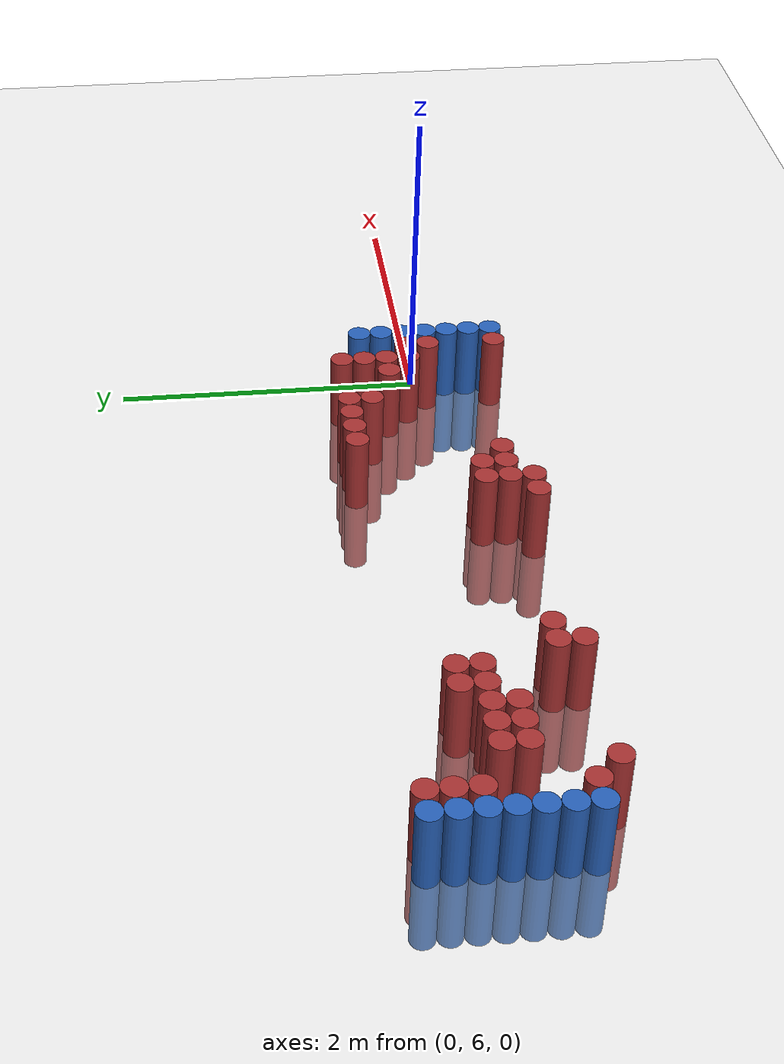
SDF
<sdf version="1.6">
 <world name="default">
  <model name="ground_plane">
   <static>1</static>
   <link name="link">
    <collision name="collision">
     <geometry><plane><normal>0 0 1</normal><size>100 100</size></plane></geometry>
     <surface><friction><ode><mu>100</mu><mu2>50</mu2></ode></friction></surface>
    </collision>
    <visual name="visual">
     <cast_shadows>0</cast_shadows>
     <geometry><plane><normal>0 0 1</normal><size>100 100</size></plane></geometry>
     <material>
      <script><uri>file://media/materials/scripts/gazebo.material</uri><name>Gazebo/Grey</name></script>
     </material>
    </visual>
   </link>
  </model>
  <model name="unit_cylinder_99">
   <static>1</static>
   <pose>-4.425000 5.625000 0.000000 0.000000 0.000000 0.000000</pose>
   <link name="link">
    <inertial>
     <mass>1</mass>
     <inertia><ixx>0.145833</ixx><ixy>0</ixy><ixz>0</ixz><iyy>0.145833</iyy><iyz>0</iyz><izz>0.125</izz></inertia>
    </inertial>
    <collision name="collision">
     <geometry><cylinder><radius>0.075000</radius><length>1</length></cylinder></geometry>
    </collision>
    <visual name="visual">
     <geometry><cylinder><radius>0.075000</radius><length>1</length></cylinder></geometry>
     <material>
      <ambient>0.152000 0.379000 0.720000 1</ambient>
      <diffuse>0.152000 0.379000 0.720000 1</diffuse>
     </material>
     <material>
      <script><name>Gazebo/Grey</name><uri>file://media/materials/scripts/gazebo.material</uri></script>
     </material>
    </visual>
   </link>
  </model>
  <model name="unit_cylinder_100">
   <static>1</static>
   <pose>-4.425000 5.775000 0.000000 0.000000 0.000000 0.000000</pose>
   <link name="link">
    <inertial>
     <mass>1</mass>
     <inertia><ixx>0.145833</ixx><ixy>0</ixy><ixz>0</ixz><iyy>0.145833</iyy><iyz>0</iyz><izz>0.125</izz></inertia>
    </inertial>
    <collision name="collision">
     <geometry><cylinder><radius>0.075000</radius><length>1</length></cylinder></geometry>
    </collision>
    <visual name="visual">
     <geometry><cylinder><radius>0.075000</radius><length>1</length></cylinder></geometry>
     <material>
      <ambient>0.152000 0.379000 0.720000 1</ambient>
      <diffuse>0.152000 0.379000 0.720000 1</diffuse>
     </material>
     <material>
      <script><name>Gazebo/Grey</name><uri>file://media/materials/scripts/gazebo.material</uri></script>
     </material>
    </visual>
   </link>
  </model>
  <model name="unit_cylinder_101">
   <static>1</static>
   <pose>-4.425000 5.925000 0.000000 0.000000 0.000000 0.000000</pose>
   <link name="link">
    <inertial>
     <mass>1</mass>
     <inertia><ixx>0.145833</ixx><ixy>0</ixy><ixz>0</ixz><iyy>0.145833</iyy><iyz>0</iyz><izz>0.125</izz></inertia>
    </inertial>
    <collision name="collision">
     <geometry><cylinder><radius>0.075000</radius><length>1</length></cylinder></geometry>
    </collision>
    <visual name="visual">
     <geometry><cylinder><radius>0.075000</radius><length>1</length></cylinder></geometry>
     <material>
      <ambient>0.152000 0.379000 0.720000 1</ambient>
      <diffuse>0.152000 0.379000 0.720000 1</diffuse>
     </material>
     <material>
      <script><name>Gazebo/Grey</name><uri>file://media/materials/scripts/gazebo.material</uri></script>
     </material>
    </visual>
   </link>
  </model>
  <model name="unit_cylinder_102">
   <static>1</static>
   <pose>-4.425000 6.075000 0.000000 0.000000 0.000000 0.000000</pose>
   <link name="link">
    <inertial>
     <mass>1</mass>
     <inertia><ixx>0.145833</ixx><ixy>0</ixy><ixz>0</ixz><iyy>0.145833</iyy><iyz>0</iyz><izz>0.125</izz></inertia>
    </inertial>
    <collision name="collision">
     <geometry><cylinder><radius>0.075000</radius><length>1</length></cylinder></geometry>
    </collision>
    <visual name="visual">
     <geometry><cylinder><radius>0.075000</radius><length>1</length></cylinder></geometry>
     <material>
      <ambient>0.152000 0.379000 0.720000 1</ambient>
      <diffuse>0.152000 0.379000 0.720000 1</diffuse>
     </material>
     <material>
      <script><name>Gazebo/Grey</name><uri>file://media/materials/scripts/gazebo.material</uri></script>
     </material>
    </visual>
   </link>
  </model>
  <model name="unit_cylinder_103">
   <static>1</static>
   <pose>-4.425000 6.225000 0.000000 0.000000 0.000000 0.000000</pose>
   <link name="link">
    <inertial>
     <mass>1</mass>
     <inertia><ixx>0.145833</ixx><ixy>0</ixy><ixz>0</ixz><iyy>0.145833</iyy><iyz>0</iyz><izz>0.125</izz></inertia>
    </inertial>
    <collision name="collision">
     <geometry><cylinder><radius>0.075000</radius><length>1</length></cylinder></geometry>
    </collision>
    <visual name="visual">
     <geometry><cylinder><radius>0.075000</radius><length>1</length></cylinder></geometry>
     <material>
      <ambient>0.152000 0.379000 0.720000 1</ambient>
      <diffuse>0.152000 0.379000 0.720000 1</diffuse>
     </material>
     <material>
      <script><name>Gazebo/Grey</name><uri>file://media/materials/scripts/gazebo.material</uri></script>
     </material>
    </visual>
   </link>
  </model>
  <model name="unit_cylinder_104">
   <static>1</static>
   <pose>-4.425000 6.375000 0.000000 0.000000 0.000000 0.000000</pose>
   <link name="link">
    <inertial>
     <mass>1</mass>
     <inertia><ixx>0.145833</ixx><ixy>0</ixy><ixz>0</ixz><iyy>0.145833</iyy><iyz>0</iyz><izz>0.125</izz></inertia>
    </inertial>
    <collision name="collision">
     <geometry><cylinder><radius>0.075000</radius><length>1</length></cylinder></geometry>
    </collision>
    <visual name="visual">
     <geometry><cylinder><radius>0.075000</radius><length>1</length></cylinder></geometry>
     <material>
      <ambient>0.152000 0.379000 0.720000 1</ambient>
      <diffuse>0.152000 0.379000 0.720000 1</diffuse>
     </material>
     <material>
      <script><name>Gazebo/Grey</name><uri>file://media/materials/scripts/gazebo.material</uri></script>
     </material>
    </visual>
   </link>
  </model>
  <model name="unit_cylinder_105">
   <static>1</static>
   <pose>-4.425000 6.525000 0.000000 0.000000 0.000000 0.000000</pose>
   <link name="link">
    <inertial>
     <mass>1</mass>
     <inertia><ixx>0.145833</ixx><ixy>0</ixy><ixz>0</ixz><iyy>0.145833</iyy><iyz>0</iyz><izz>0.125</izz></inertia>
    </inertial>
    <collision name="collision">
     <geometry><cylinder><radius>0.075000</radius><length>1</length></cylinder></geometry>
    </collision>
    <visual name="visual">
     <geometry><cylinder><radius>0.075000</radius><length>1</length></cylinder></geometry>
     <material>
      <ambient>0.152000 0.379000 0.720000 1</ambient>
      <diffuse>0.152000 0.379000 0.720000 1</diffuse>
     </material>
     <material>
      <script><name>Gazebo/Grey</name><uri>file://media/materials/scripts/gazebo.material</uri></script>
     </material>
    </visual>
   </link>
  </model>
  <model name="unit_cylinder_128">
   <static>1</static>
   <pose>-4.275000 5.625000 0.000000 0.000000 0.000000 0.000000</pose>
   <link name="link">
    <inertial>
     <mass>1</mass>
     <inertia><ixx>0.145833</ixx><ixy>0</ixy><ixz>0</ixz><iyy>0.145833</iyy><iyz>0</iyz><izz>0.125</izz></inertia>
    </inertial>
    <collision name="collision">
     <geometry><cylinder><radius>0.075000</radius><length>1</length></cylinder></geometry>
    </collision>
    <visual name="visual">
     <geometry><cylinder><radius>0.075000</radius><length>1</length></cylinder></geometry>
     <material>
      <ambient>0.648000 0.192000 0.192000 1</ambient>
      <diffuse>0.648000 0.192000 0.192000 1</diffuse>
     </material>
     <material>
      <script><name>Gazebo/Grey</name><uri>file://media/materials/scripts/gazebo.material</uri></script>
     </material>
    </visual>
   </link>
  </model>
  <model name="unit_cylinder_129">
   <static>1</static>
   <pose>-4.275000 6.225000 0.000000 0.000000 0.000000 0.000000</pose>
   <link name="link">
    <inertial>
     <mass>1</mass>
     <inertia><ixx>0.145833</ixx><ixy>0</ixy><ixz>0</ixz><iyy>0.145833</iyy><iyz>0</iyz><izz>0.125</izz></inertia>
    </inertial>
    <collision name="collision">
     <geometry><cylinder><radius>0.075000</radius><length>1</length></cylinder></geometry>
    </collision>
    <visual name="visual">
     <geometry><cylinder><radius>0.075000</radius><length>1</length></cylinder></geometry>
     <material>
      <ambient>0.648000 0.192000 0.192000 1</ambient>
      <diffuse>0.648000 0.192000 0.192000 1</diffuse>
     </material>
     <material>
      <script><name>Gazebo/Grey</name><uri>file://media/materials/scripts/gazebo.material</uri></script>
     </material>
    </visual>
   </link>
  </model>
  <model name="unit_cylinder_130">
   <static>1</static>
   <pose>-4.275000 6.375000 0.000000 0.000000 0.000000 0.000000</pose>
   <link name="link">
    <inertial>
     <mass>1</mass>
     <inertia><ixx>0.145833</ixx><ixy>0</ixy><ixz>0</ixz><iyy>0.145833</iyy><iyz>0</iyz><izz>0.125</izz></inertia>
    </inertial>
    <collision name="collision">
     <geometry><cylinder><radius>0.075000</radius><length>1</length></cylinder></geometry>
    </collision>
    <visual name="visual">
     <geometry><cylinder><radius>0.075000</radius><length>1</length></cylinder></geometry>
     <material>
      <ambient>0.648000 0.192000 0.192000 1</ambient>
      <diffuse>0.648000 0.192000 0.192000 1</diffuse>
     </material>
     <material>
      <script><name>Gazebo/Grey</name><uri>file://media/materials/scripts/gazebo.material</uri></script>
     </material>
    </visual>
   </link>
  </model>
  <model name="unit_cylinder_131">
   <static>1</static>
   <pose>-4.275000 6.525000 0.000000 0.000000 0.000000 0.000000</pose>
   <link name="link">
    <inertial>
     <mass>1</mass>
     <inertia><ixx>0.145833</ixx><ixy>0</ixy><ixz>0</ixz><iyy>0.145833</iyy><iyz>0</iyz><izz>0.125</izz></inertia>
    </inertial>
    <collision name="collision">
     <geometry><cylinder><radius>0.075000</radius><length>1</length></cylinder></geometry>
    </collision>
    <visual name="visual">
     <geometry><cylinder><radius>0.075000</radius><length>1</length></cylinder></geometry>
     <material>
      <ambient>0.648000 0.192000 0.192000 1</ambient>
      <diffuse>0.648000 0.192000 0.192000 1</diffuse>
     </material>
     <material>
      <script><name>Gazebo/Grey</name><uri>file://media/materials/scripts/gazebo.material</uri></script>
     </material>
    </visual>
   </link>
  </model>
  <model name="unit_cylinder_142">
   <static>1</static>
   <pose>-4.125000 5.475000 0.000000 0.000000 0.000000 0.000000</pose>
   <link name="link">
    <inertial>
     <mass>1</mass>
     <inertia><ixx>0.145833</ixx><ixy>0</ixy><ixz>0</ixz><iyy>0.145833</iyy><iyz>0</iyz><izz>0.125</izz></inertia>
    </inertial>
    <collision name="collision">
     <geometry><cylinder><radius>0.075000</radius><length>1</length></cylinder></geometry>
    </collision>
    <visual name="visual">
     <geometry><cylinder><radius>0.075000</radius><length>1</length></cylinder></geometry>
     <material>
      <ambient>0.648000 0.192000 0.192000 1</ambient>
      <diffuse>0.648000 0.192000 0.192000 1</diffuse>
     </material>
     <material>
      <script><name>Gazebo/Grey</name><uri>file://media/materials/scripts/gazebo.material</uri></script>
     </material>
    </visual>
   </link>
  </model>
  <model name="unit_cylinder_152">
   <static>1</static>
   <pose>-3.975000 5.925000 0.000000 0.000000 0.000000 0.000000</pose>
   <link name="link">
    <inertial>
     <mass>1</mass>
     <inertia><ixx>0.145833</ixx><ixy>0</ixy><ixz>0</ixz><iyy>0.145833</iyy><iyz>0</iyz><izz>0.125</izz></inertia>
    </inertial>
    <collision name="collision">
     <geometry><cylinder><radius>0.075000</radius><length>1</length></cylinder></geometry>
    </collision>
    <visual name="visual">
     <geometry><cylinder><radius>0.075000</radius><length>1</length></cylinder></geometry>
     <material>
      <ambient>0.648000 0.192000 0.192000 1</ambient>
      <diffuse>0.648000 0.192000 0.192000 1</diffuse>
     </material>
     <material>
      <script><name>Gazebo/Grey</name><uri>file://media/materials/scripts/gazebo.material</uri></script>
     </material>
    </visual>
   </link>
  </model>
  <model name="unit_cylinder_153">
   <static>1</static>
   <pose>-3.975000 6.075000 0.000000 0.000000 0.000000 0.000000</pose>
   <link name="link">
    <inertial>
     <mass>1</mass>
     <inertia><ixx>0.145833</ixx><ixy>0</ixy><ixz>0</ixz><iyy>0.145833</iyy><iyz>0</iyz><izz>0.125</izz></inertia>
    </inertial>
    <collision name="collision">
     <geometry><cylinder><radius>0.075000</radius><length>1</length></cylinder></geometry>
    </collision>
    <visual name="visual">
     <geometry><cylinder><radius>0.075000</radius><length>1</length></cylinder></geometry>
     <material>
      <ambient>0.648000 0.192000 0.192000 1</ambient>
      <diffuse>0.648000 0.192000 0.192000 1</diffuse>
     </material>
     <material>
      <script><name>Gazebo/Grey</name><uri>file://media/materials/scripts/gazebo.material</uri></script>
     </material>
    </visual>
   </link>
  </model>
  <model name="unit_cylinder_160">
   <static>1</static>
   <pose>-3.825000 5.925000 0.000000 0.000000 0.000000 0.000000</pose>
   <link name="link">
    <inertial>
     <mass>1</mass>
     <inertia><ixx>0.145833</ixx><ixy>0</ixy><ixz>0</ixz><iyy>0.145833</iyy><iyz>0</iyz><izz>0.125</izz></inertia>
    </inertial>
    <collision name="collision">
     <geometry><cylinder><radius>0.075000</radius><length>1</length></cylinder></geometry>
    </collision>
    <visual name="visual">
     <geometry><cylinder><radius>0.075000</radius><length>1</length></cylinder></geometry>
     <material>
      <ambient>0.648000 0.192000 0.192000 1</ambient>
      <diffuse>0.648000 0.192000 0.192000 1</diffuse>
     </material>
     <material>
      <script><name>Gazebo/Grey</name><uri>file://media/materials/scripts/gazebo.material</uri></script>
     </material>
    </visual>
   </link>
  </model>
  <model name="unit_cylinder_161">
   <static>1</static>
   <pose>-3.825000 6.075000 0.000000 0.000000 0.000000 0.000000</pose>
   <link name="link">
    <inertial>
     <mass>1</mass>
     <inertia><ixx>0.145833</ixx><ixy>0</ixy><ixz>0</ixz><iyy>0.145833</iyy><iyz>0</iyz><izz>0.125</izz></inertia>
    </inertial>
    <collision name="collision">
     <geometry><cylinder><radius>0.075000</radius><length>1</length></cylinder></geometry>
    </collision>
    <visual name="visual">
     <geometry><cylinder><radius>0.075000</radius><length>1</length></cylinder></geometry>
     <material>
      <ambient>0.648000 0.192000 0.192000 1</ambient>
      <diffuse>0.648000 0.192000 0.192000 1</diffuse>
     </material>
     <material>
      <script><name>Gazebo/Grey</name><uri>file://media/materials/scripts/gazebo.material</uri></script>
     </material>
    </visual>
   </link>
  </model>
  <model name="unit_cylinder_167">
   <static>1</static>
   <pose>-3.675000 5.925000 0.000000 0.000000 0.000000 0.000000</pose>
   <link name="link">
    <inertial>
     <mass>1</mass>
     <inertia><ixx>0.145833</ixx><ixy>0</ixy><ixz>0</ixz><iyy>0.145833</iyy><iyz>0</iyz><izz>0.125</izz></inertia>
    </inertial>
    <collision name="collision">
     <geometry><cylinder><radius>0.075000</radius><length>1</length></cylinder></geometry>
    </collision>
    <visual name="visual">
     <geometry><cylinder><radius>0.075000</radius><length>1</length></cylinder></geometry>
     <material>
      <ambient>0.648000 0.192000 0.192000 1</ambient>
      <diffuse>0.648000 0.192000 0.192000 1</diffuse>
     </material>
     <material>
      <script><name>Gazebo/Grey</name><uri>file://media/materials/scripts/gazebo.material</uri></script>
     </material>
    </visual>
   </link>
  </model>
  <model name="unit_cylinder_168">
   <static>1</static>
   <pose>-3.675000 6.075000 0.000000 0.000000 0.000000 0.000000</pose>
   <link name="link">
    <inertial>
     <mass>1</mass>
     <inertia><ixx>0.145833</ixx><ixy>0</ixy><ixz>0</ixz><iyy>0.145833</iyy><iyz>0</iyz><izz>0.125</izz></inertia>
    </inertial>
    <collision name="collision">
     <geometry><cylinder><radius>0.075000</radius><length>1</length></cylinder></geometry>
    </collision>
    <visual name="visual">
     <geometry><cylinder><radius>0.075000</radius><length>1</length></cylinder></geometry>
     <material>
      <ambient>0.648000 0.192000 0.192000 1</ambient>
      <diffuse>0.648000 0.192000 0.192000 1</diffuse>
     </material>
     <material>
      <script><name>Gazebo/Grey</name><uri>file://media/materials/scripts/gazebo.material</uri></script>
     </material>
    </visual>
   </link>
  </model>
  <model name="unit_cylinder_172">
   <static>1</static>
   <pose>-3.525000 6.075000 0.000000 0.000000 0.000000 0.000000</pose>
   <link name="link">
    <inertial>
     <mass>1</mass>
     <inertia><ixx>0.145833</ixx><ixy>0</ixy><ixz>0</ixz><iyy>0.145833</iyy><iyz>0</iyz><izz>0.125</izz></inertia>
    </inertial>
    <collision name="collision">
     <geometry><cylinder><radius>0.075000</radius><length>1</length></cylinder></geometry>
    </collision>
    <visual name="visual">
     <geometry><cylinder><radius>0.075000</radius><length>1</length></cylinder></geometry>
     <material>
      <ambient>0.648000 0.192000 0.192000 1</ambient>
      <diffuse>0.648000 0.192000 0.192000 1</diffuse>
     </material>
     <material>
      <script><name>Gazebo/Grey</name><uri>file://media/materials/scripts/gazebo.material</uri></script>
     </material>
    </visual>
   </link>
  </model>
  <model name="unit_cylinder_173">
   <static>1</static>
   <pose>-3.525000 6.225000 0.000000 0.000000 0.000000 0.000000</pose>
   <link name="link">
    <inertial>
     <mass>1</mass>
     <inertia><ixx>0.145833</ixx><ixy>0</ixy><ixz>0</ixz><iyy>0.145833</iyy><iyz>0</iyz><izz>0.125</izz></inertia>
    </inertial>
    <collision name="collision">
     <geometry><cylinder><radius>0.075000</radius><length>1</length></cylinder></geometry>
    </collision>
    <visual name="visual">
     <geometry><cylinder><radius>0.075000</radius><length>1</length></cylinder></geometry>
     <material>
      <ambient>0.648000 0.192000 0.192000 1</ambient>
      <diffuse>0.648000 0.192000 0.192000 1</diffuse>
     </material>
     <material>
      <script><name>Gazebo/Grey</name><uri>file://media/materials/scripts/gazebo.material</uri></script>
     </material>
    </visual>
   </link>
  </model>
  <model name="unit_cylinder_178">
   <static>1</static>
   <pose>-3.375000 6.075000 0.000000 0.000000 0.000000 0.000000</pose>
   <link name="link">
    <inertial>
     <mass>1</mass>
     <inertia><ixx>0.145833</ixx><ixy>0</ixy><ixz>0</ixz><iyy>0.145833</iyy><iyz>0</iyz><izz>0.125</izz></inertia>
    </inertial>
    <collision name="collision">
     <geometry><cylinder><radius>0.075000</radius><length>1</length></cylinder></geometry>
    </collision>
    <visual name="visual">
     <geometry><cylinder><radius>0.075000</radius><length>1</length></cylinder></geometry>
     <material>
      <ambient>0.648000 0.192000 0.192000 1</ambient>
      <diffuse>0.648000 0.192000 0.192000 1</diffuse>
     </material>
     <material>
      <script><name>Gazebo/Grey</name><uri>file://media/materials/scripts/gazebo.material</uri></script>
     </material>
    </visual>
   </link>
  </model>
  <model name="unit_cylinder_179">
   <static>1</static>
   <pose>-3.375000 6.225000 0.000000 0.000000 0.000000 0.000000</pose>
   <link name="link">
    <inertial>
     <mass>1</mass>
     <inertia><ixx>0.145833</ixx><ixy>0</ixy><ixz>0</ixz><iyy>0.145833</iyy><iyz>0</iyz><izz>0.125</izz></inertia>
    </inertial>
    <collision name="collision">
     <geometry><cylinder><radius>0.075000</radius><length>1</length></cylinder></geometry>
    </collision>
    <visual name="visual">
     <geometry><cylinder><radius>0.075000</radius><length>1</length></cylinder></geometry>
     <material>
      <ambient>0.648000 0.192000 0.192000 1</ambient>
      <diffuse>0.648000 0.192000 0.192000 1</diffuse>
     </material>
     <material>
      <script><name>Gazebo/Grey</name><uri>file://media/materials/scripts/gazebo.material</uri></script>
     </material>
    </visual>
   </link>
  </model>
  <model name="unit_cylinder_184">
   <static>1</static>
   <pose>-3.225000 5.475000 0.000000 0.000000 0.000000 0.000000</pose>
   <link name="link">
    <inertial>
     <mass>1</mass>
     <inertia><ixx>0.145833</ixx><ixy>0</ixy><ixz>0</ixz><iyy>0.145833</iyy><iyz>0</iyz><izz>0.125</izz></inertia>
    </inertial>
    <collision name="collision">
     <geometry><cylinder><radius>0.075000</radius><length>1</length></cylinder></geometry>
    </collision>
    <visual name="visual">
     <geometry><cylinder><radius>0.075000</radius><length>1</length></cylinder></geometry>
     <material>
      <ambient>0.648000 0.192000 0.192000 1</ambient>
      <diffuse>0.648000 0.192000 0.192000 1</diffuse>
     </material>
     <material>
      <script><name>Gazebo/Grey</name><uri>file://media/materials/scripts/gazebo.material</uri></script>
     </material>
    </visual>
   </link>
  </model>
  <model name="unit_cylinder_185">
   <static>1</static>
   <pose>-3.225000 5.625000 0.000000 0.000000 0.000000 0.000000</pose>
   <link name="link">
    <inertial>
     <mass>1</mass>
     <inertia><ixx>0.145833</ixx><ixy>0</ixy><ixz>0</ixz><iyy>0.145833</iyy><iyz>0</iyz><izz>0.125</izz></inertia>
    </inertial>
    <collision name="collision">
     <geometry><cylinder><radius>0.075000</radius><length>1</length></cylinder></geometry>
    </collision>
    <visual name="visual">
     <geometry><cylinder><radius>0.075000</radius><length>1</length></cylinder></geometry>
     <material>
      <ambient>0.648000 0.192000 0.192000 1</ambient>
      <diffuse>0.648000 0.192000 0.192000 1</diffuse>
     </material>
     <material>
      <script><name>Gazebo/Grey</name><uri>file://media/materials/scripts/gazebo.material</uri></script>
     </material>
    </visual>
   </link>
  </model>
  <model name="unit_cylinder_189">
   <static>1</static>
   <pose>-3.075000 5.625000 0.000000 0.000000 0.000000 0.000000</pose>
   <link name="link">
    <inertial>
     <mass>1</mass>
     <inertia><ixx>0.145833</ixx><ixy>0</ixy><ixz>0</ixz><iyy>0.145833</iyy><iyz>0</iyz><izz>0.125</izz></inertia>
    </inertial>
    <collision name="collision">
     <geometry><cylinder><radius>0.075000</radius><length>1</length></cylinder></geometry>
    </collision>
    <visual name="visual">
     <geometry><cylinder><radius>0.075000</radius><length>1</length></cylinder></geometry>
     <material>
      <ambient>0.648000 0.192000 0.192000 1</ambient>
      <diffuse>0.648000 0.192000 0.192000 1</diffuse>
     </material>
     <material>
      <script><name>Gazebo/Grey</name><uri>file://media/materials/scripts/gazebo.material</uri></script>
     </material>
    </visual>
   </link>
  </model>
  <model name="unit_cylinder_214">
   <static>1</static>
   <pose>-1.875000 5.475000 0.000000 0.000000 0.000000 0.000000</pose>
   <link name="link">
    <inertial>
     <mass>1</mass>
     <inertia><ixx>0.145833</ixx><ixy>0</ixy><ixz>0</ixz><iyy>0.145833</iyy><iyz>0</iyz><izz>0.125</izz></inertia>
    </inertial>
    <collision name="collision">
     <geometry><cylinder><radius>0.075000</radius><length>1</length></cylinder></geometry>
    </collision>
    <visual name="visual">
     <geometry><cylinder><radius>0.075000</radius><length>1</length></cylinder></geometry>
     <material>
      <ambient>0.648000 0.192000 0.192000 1</ambient>
      <diffuse>0.648000 0.192000 0.192000 1</diffuse>
     </material>
     <material>
      <script><name>Gazebo/Grey</name><uri>file://media/materials/scripts/gazebo.material</uri></script>
     </material>
    </visual>
   </link>
  </model>
  <model name="unit_cylinder_215">
   <static>1</static>
   <pose>-1.725000 5.475000 0.000000 0.000000 0.000000 0.000000</pose>
   <link name="link">
    <inertial>
     <mass>1</mass>
     <inertia><ixx>0.145833</ixx><ixy>0</ixy><ixz>0</ixz><iyy>0.145833</iyy><iyz>0</iyz><izz>0.125</izz></inertia>
    </inertial>
    <collision name="collision">
     <geometry><cylinder><radius>0.075000</radius><length>1</length></cylinder></geometry>
    </collision>
    <visual name="visual">
     <geometry><cylinder><radius>0.075000</radius><length>1</length></cylinder></geometry>
     <material>
      <ambient>0.648000 0.192000 0.192000 1</ambient>
      <diffuse>0.648000 0.192000 0.192000 1</diffuse>
     </material>
     <material>
      <script><name>Gazebo/Grey</name><uri>file://media/materials/scripts/gazebo.material</uri></script>
     </material>
    </visual>
   </link>
  </model>
  <model name="unit_cylinder_216">
   <static>1</static>
   <pose>-1.725000 5.625000 0.000000 0.000000 0.000000 0.000000</pose>
   <link name="link">
    <inertial>
     <mass>1</mass>
     <inertia><ixx>0.145833</ixx><ixy>0</ixy><ixz>0</ixz><iyy>0.145833</iyy><iyz>0</iyz><izz>0.125</izz></inertia>
    </inertial>
    <collision name="collision">
     <geometry><cylinder><radius>0.075000</radius><length>1</length></cylinder></geometry>
    </collision>
    <visual name="visual">
     <geometry><cylinder><radius>0.075000</radius><length>1</length></cylinder></geometry>
     <material>
      <ambient>0.648000 0.192000 0.192000 1</ambient>
      <diffuse>0.648000 0.192000 0.192000 1</diffuse>
     </material>
     <material>
      <script><name>Gazebo/Grey</name><uri>file://media/materials/scripts/gazebo.material</uri></script>
     </material>
    </visual>
   </link>
  </model>
  <model name="unit_cylinder_217">
   <static>1</static>
   <pose>-1.725000 5.775000 0.000000 0.000000 0.000000 0.000000</pose>
   <link name="link">
    <inertial>
     <mass>1</mass>
     <inertia><ixx>0.145833</ixx><ixy>0</ixy><ixz>0</ixz><iyy>0.145833</iyy><iyz>0</iyz><izz>0.125</izz></inertia>
    </inertial>
    <collision name="collision">
     <geometry><cylinder><radius>0.075000</radius><length>1</length></cylinder></geometry>
    </collision>
    <visual name="visual">
     <geometry><cylinder><radius>0.075000</radius><length>1</length></cylinder></geometry>
     <material>
      <ambient>0.648000 0.192000 0.192000 1</ambient>
      <diffuse>0.648000 0.192000 0.192000 1</diffuse>
     </material>
     <material>
      <script><name>Gazebo/Grey</name><uri>file://media/materials/scripts/gazebo.material</uri></script>
     </material>
    </visual>
   </link>
  </model>
  <model name="unit_cylinder_218">
   <static>1</static>
   <pose>-1.575000 5.625000 0.000000 0.000000 0.000000 0.000000</pose>
   <link name="link">
    <inertial>
     <mass>1</mass>
     <inertia><ixx>0.145833</ixx><ixy>0</ixy><ixz>0</ixz><iyy>0.145833</iyy><iyz>0</iyz><izz>0.125</izz></inertia>
    </inertial>
    <collision name="collision">
     <geometry><cylinder><radius>0.075000</radius><length>1</length></cylinder></geometry>
    </collision>
    <visual name="visual">
     <geometry><cylinder><radius>0.075000</radius><length>1</length></cylinder></geometry>
     <material>
      <ambient>0.648000 0.192000 0.192000 1</ambient>
      <diffuse>0.648000 0.192000 0.192000 1</diffuse>
     </material>
     <material>
      <script><name>Gazebo/Grey</name><uri>file://media/materials/scripts/gazebo.material</uri></script>
     </material>
    </visual>
   </link>
  </model>
  <model name="unit_cylinder_219">
   <static>1</static>
   <pose>-1.575000 5.775000 0.000000 0.000000 0.000000 0.000000</pose>
   <link name="link">
    <inertial>
     <mass>1</mass>
     <inertia><ixx>0.145833</ixx><ixy>0</ixy><ixz>0</ixz><iyy>0.145833</iyy><iyz>0</iyz><izz>0.125</izz></inertia>
    </inertial>
    <collision name="collision">
     <geometry><cylinder><radius>0.075000</radius><length>1</length></cylinder></geometry>
    </collision>
    <visual name="visual">
     <geometry><cylinder><radius>0.075000</radius><length>1</length></cylinder></geometry>
     <material>
      <ambient>0.648000 0.192000 0.192000 1</ambient>
      <diffuse>0.648000 0.192000 0.192000 1</diffuse>
     </material>
     <material>
      <script><name>Gazebo/Grey</name><uri>file://media/materials/scripts/gazebo.material</uri></script>
     </material>
    </visual>
   </link>
  </model>
  <model name="unit_cylinder_221">
   <static>1</static>
   <pose>-1.425000 5.625000 0.000000 0.000000 0.000000 0.000000</pose>
   <link name="link">
    <inertial>
     <mass>1</mass>
     <inertia><ixx>0.145833</ixx><ixy>0</ixy><ixz>0</ixz><iyy>0.145833</iyy><iyz>0</iyz><izz>0.125</izz></inertia>
    </inertial>
    <collision name="collision">
     <geometry><cylinder><radius>0.075000</radius><length>1</length></cylinder></geometry>
    </collision>
    <visual name="visual">
     <geometry><cylinder><radius>0.075000</radius><length>1</length></cylinder></geometry>
     <material>
      <ambient>0.648000 0.192000 0.192000 1</ambient>
      <diffuse>0.648000 0.192000 0.192000 1</diffuse>
     </material>
     <material>
      <script><name>Gazebo/Grey</name><uri>file://media/materials/scripts/gazebo.material</uri></script>
     </material>
    </visual>
   </link>
  </model>
  <model name="unit_cylinder_224">
   <static>1</static>
   <pose>-1.275000 6.525000 0.000000 0.000000 0.000000 0.000000</pose>
   <link name="link">
    <inertial>
     <mass>1</mass>
     <inertia><ixx>0.145833</ixx><ixy>0</ixy><ixz>0</ixz><iyy>0.145833</iyy><iyz>0</iyz><izz>0.125</izz></inertia>
    </inertial>
    <collision name="collision">
     <geometry><cylinder><radius>0.075000</radius><length>1</length></cylinder></geometry>
    </collision>
    <visual name="visual">
     <geometry><cylinder><radius>0.075000</radius><length>1</length></cylinder></geometry>
     <material>
      <ambient>0.648000 0.192000 0.192000 1</ambient>
      <diffuse>0.648000 0.192000 0.192000 1</diffuse>
     </material>
     <material>
      <script><name>Gazebo/Grey</name><uri>file://media/materials/scripts/gazebo.material</uri></script>
     </material>
    </visual>
   </link>
  </model>
  <model name="unit_cylinder_226">
   <static>1</static>
   <pose>-1.125000 6.525000 0.000000 0.000000 0.000000 0.000000</pose>
   <link name="link">
    <inertial>
     <mass>1</mass>
     <inertia><ixx>0.145833</ixx><ixy>0</ixy><ixz>0</ixz><iyy>0.145833</iyy><iyz>0</iyz><izz>0.125</izz></inertia>
    </inertial>
    <collision name="collision">
     <geometry><cylinder><radius>0.075000</radius><length>1</length></cylinder></geometry>
    </collision>
    <visual name="visual">
     <geometry><cylinder><radius>0.075000</radius><length>1</length></cylinder></geometry>
     <material>
      <ambient>0.648000 0.192000 0.192000 1</ambient>
      <diffuse>0.648000 0.192000 0.192000 1</diffuse>
     </material>
     <material>
      <script><name>Gazebo/Grey</name><uri>file://media/materials/scripts/gazebo.material</uri></script>
     </material>
    </visual>
   </link>
  </model>
  <model name="unit_cylinder_230">
   <static>1</static>
   <pose>-0.975000 6.525000 0.000000 0.000000 0.000000 0.000000</pose>
   <link name="link">
    <inertial>
     <mass>1</mass>
     <inertia><ixx>0.145833</ixx><ixy>0</ixy><ixz>0</ixz><iyy>0.145833</iyy><iyz>0</iyz><izz>0.125</izz></inertia>
    </inertial>
    <collision name="collision">
     <geometry><cylinder><radius>0.075000</radius><length>1</length></cylinder></geometry>
    </collision>
    <visual name="visual">
     <geometry><cylinder><radius>0.075000</radius><length>1</length></cylinder></geometry>
     <material>
      <ambient>0.648000 0.192000 0.192000 1</ambient>
      <diffuse>0.648000 0.192000 0.192000 1</diffuse>
     </material>
     <material>
      <script><name>Gazebo/Grey</name><uri>file://media/materials/scripts/gazebo.material</uri></script>
     </material>
    </visual>
   </link>
  </model>
  <model name="unit_cylinder_237">
   <static>1</static>
   <pose>-0.825000 6.375000 0.000000 0.000000 0.000000 0.000000</pose>
   <link name="link">
    <inertial>
     <mass>1</mass>
     <inertia><ixx>0.145833</ixx><ixy>0</ixy><ixz>0</ixz><iyy>0.145833</iyy><iyz>0</iyz><izz>0.125</izz></inertia>
    </inertial>
    <collision name="collision">
     <geometry><cylinder><radius>0.075000</radius><length>1</length></cylinder></geometry>
    </collision>
    <visual name="visual">
     <geometry><cylinder><radius>0.075000</radius><length>1</length></cylinder></geometry>
     <material>
      <ambient>0.648000 0.192000 0.192000 1</ambient>
      <diffuse>0.648000 0.192000 0.192000 1</diffuse>
     </material>
     <material>
      <script><name>Gazebo/Grey</name><uri>file://media/materials/scripts/gazebo.material</uri></script>
     </material>
    </visual>
   </link>
  </model>
  <model name="unit_cylinder_238">
   <static>1</static>
   <pose>-0.825000 6.525000 0.000000 0.000000 0.000000 0.000000</pose>
   <link name="link">
    <inertial>
     <mass>1</mass>
     <inertia><ixx>0.145833</ixx><ixy>0</ixy><ixz>0</ixz><iyy>0.145833</iyy><iyz>0</iyz><izz>0.125</izz></inertia>
    </inertial>
    <collision name="collision">
     <geometry><cylinder><radius>0.075000</radius><length>1</length></cylinder></geometry>
    </collision>
    <visual name="visual">
     <geometry><cylinder><radius>0.075000</radius><length>1</length></cylinder></geometry>
     <material>
      <ambient>0.648000 0.192000 0.192000 1</ambient>
      <diffuse>0.648000 0.192000 0.192000 1</diffuse>
     </material>
     <material>
      <script><name>Gazebo/Grey</name><uri>file://media/materials/scripts/gazebo.material</uri></script>
     </material>
    </visual>
   </link>
  </model>
  <model name="unit_cylinder_245">
   <static>1</static>
   <pose>-0.525000 6.225000 0.000000 0.000000 0.000000 0.000000</pose>
   <link name="link">
    <inertial>
     <mass>1</mass>
     <inertia><ixx>0.145833</ixx><ixy>0</ixy><ixz>0</ixz><iyy>0.145833</iyy><iyz>0</iyz><izz>0.125</izz></inertia>
    </inertial>
    <collision name="collision">
     <geometry><cylinder><radius>0.075000</radius><length>1</length></cylinder></geometry>
    </collision>
    <visual name="visual">
     <geometry><cylinder><radius>0.075000</radius><length>1</length></cylinder></geometry>
     <material>
      <ambient>0.648000 0.192000 0.192000 1</ambient>
      <diffuse>0.648000 0.192000 0.192000 1</diffuse>
     </material>
     <material>
      <script><name>Gazebo/Grey</name><uri>file://media/materials/scripts/gazebo.material</uri></script>
     </material>
    </visual>
   </link>
  </model>
  <model name="unit_cylinder_252">
   <static>1</static>
   <pose>-0.375000 6.075000 0.000000 0.000000 0.000000 0.000000</pose>
   <link name="link">
    <inertial>
     <mass>1</mass>
     <inertia><ixx>0.145833</ixx><ixy>0</ixy><ixz>0</ixz><iyy>0.145833</iyy><iyz>0</iyz><izz>0.125</izz></inertia>
    </inertial>
    <collision name="collision">
     <geometry><cylinder><radius>0.075000</radius><length>1</length></cylinder></geometry>
    </collision>
    <visual name="visual">
     <geometry><cylinder><radius>0.075000</radius><length>1</length></cylinder></geometry>
     <material>
      <ambient>0.648000 0.192000 0.192000 1</ambient>
      <diffuse>0.648000 0.192000 0.192000 1</diffuse>
     </material>
     <material>
      <script><name>Gazebo/Grey</name><uri>file://media/materials/scripts/gazebo.material</uri></script>
     </material>
    </visual>
   </link>
  </model>
  <model name="unit_cylinder_253">
   <static>1</static>
   <pose>-0.375000 6.225000 0.000000 0.000000 0.000000 0.000000</pose>
   <link name="link">
    <inertial>
     <mass>1</mass>
     <inertia><ixx>0.145833</ixx><ixy>0</ixy><ixz>0</ixz><iyy>0.145833</iyy><iyz>0</iyz><izz>0.125</izz></inertia>
    </inertial>
    <collision name="collision">
     <geometry><cylinder><radius>0.075000</radius><length>1</length></cylinder></geometry>
    </collision>
    <visual name="visual">
     <geometry><cylinder><radius>0.075000</radius><length>1</length></cylinder></geometry>
     <material>
      <ambient>0.648000 0.192000 0.192000 1</ambient>
      <diffuse>0.648000 0.192000 0.192000 1</diffuse>
     </material>
     <material>
      <script><name>Gazebo/Grey</name><uri>file://media/materials/scripts/gazebo.material</uri></script>
     </material>
    </visual>
   </link>
  </model>
  <model name="unit_cylinder_254">
   <static>1</static>
   <pose>-0.375000 6.375000 0.000000 0.000000 0.000000 0.000000</pose>
   <link name="link">
    <inertial>
     <mass>1</mass>
     <inertia><ixx>0.145833</ixx><ixy>0</ixy><ixz>0</ixz><iyy>0.145833</iyy><iyz>0</iyz><izz>0.125</izz></inertia>
    </inertial>
    <collision name="collision">
     <geometry><cylinder><radius>0.075000</radius><length>1</length></cylinder></geometry>
    </collision>
    <visual name="visual">
     <geometry><cylinder><radius>0.075000</radius><length>1</length></cylinder></geometry>
     <material>
      <ambient>0.648000 0.192000 0.192000 1</ambient>
      <diffuse>0.648000 0.192000 0.192000 1</diffuse>
     </material>
     <material>
      <script><name>Gazebo/Grey</name><uri>file://media/materials/scripts/gazebo.material</uri></script>
     </material>
    </visual>
   </link>
  </model>
  <model name="unit_cylinder_255">
   <static>1</static>
   <pose>-0.375000 6.525000 0.000000 0.000000 0.000000 0.000000</pose>
   <link name="link">
    <inertial>
     <mass>1</mass>
     <inertia><ixx>0.145833</ixx><ixy>0</ixy><ixz>0</ixz><iyy>0.145833</iyy><iyz>0</iyz><izz>0.125</izz></inertia>
    </inertial>
    <collision name="collision">
     <geometry><cylinder><radius>0.075000</radius><length>1</length></cylinder></geometry>
    </collision>
    <visual name="visual">
     <geometry><cylinder><radius>0.075000</radius><length>1</length></cylinder></geometry>
     <material>
      <ambient>0.648000 0.192000 0.192000 1</ambient>
      <diffuse>0.648000 0.192000 0.192000 1</diffuse>
     </material>
     <material>
      <script><name>Gazebo/Grey</name><uri>file://media/materials/scripts/gazebo.material</uri></script>
     </material>
    </visual>
   </link>
  </model>
  <model name="unit_cylinder_270">
   <static>1</static>
   <pose>-0.225000 5.475000 0.000000 0.000000 0.000000 0.000000</pose>
   <link name="link">
    <inertial>
     <mass>1</mass>
     <inertia><ixx>0.145833</ixx><ixy>0</ixy><ixz>0</ixz><iyy>0.145833</iyy><iyz>0</iyz><izz>0.125</izz></inertia>
    </inertial>
    <collision name="collision">
     <geometry><cylinder><radius>0.075000</radius><length>1</length></cylinder></geometry>
    </collision>
    <visual name="visual">
     <geometry><cylinder><radius>0.075000</radius><length>1</length></cylinder></geometry>
     <material>
      <ambient>0.648000 0.192000 0.192000 1</ambient>
      <diffuse>0.648000 0.192000 0.192000 1</diffuse>
     </material>
     <material>
      <script><name>Gazebo/Grey</name><uri>file://media/materials/scripts/gazebo.material</uri></script>
     </material>
    </visual>
   </link>
  </model>
  <model name="unit_cylinder_271">
   <static>1</static>
   <pose>-0.225000 5.925000 0.000000 0.000000 0.000000 0.000000</pose>
   <link name="link">
    <inertial>
     <mass>1</mass>
     <inertia><ixx>0.145833</ixx><ixy>0</ixy><ixz>0</ixz><iyy>0.145833</iyy><iyz>0</iyz><izz>0.125</izz></inertia>
    </inertial>
    <collision name="collision">
     <geometry><cylinder><radius>0.075000</radius><length>1</length></cylinder></geometry>
    </collision>
    <visual name="visual">
     <geometry><cylinder><radius>0.075000</radius><length>1</length></cylinder></geometry>
     <material>
      <ambient>0.648000 0.192000 0.192000 1</ambient>
      <diffuse>0.648000 0.192000 0.192000 1</diffuse>
     </material>
     <material>
      <script><name>Gazebo/Grey</name><uri>file://media/materials/scripts/gazebo.material</uri></script>
     </material>
    </visual>
   </link>
  </model>
  <model name="unit_cylinder_272">
   <static>1</static>
   <pose>-0.225000 6.075000 0.000000 0.000000 0.000000 0.000000</pose>
   <link name="link">
    <inertial>
     <mass>1</mass>
     <inertia><ixx>0.145833</ixx><ixy>0</ixy><ixz>0</ixz><iyy>0.145833</iyy><iyz>0</iyz><izz>0.125</izz></inertia>
    </inertial>
    <collision name="collision">
     <geometry><cylinder><radius>0.075000</radius><length>1</length></cylinder></geometry>
    </collision>
    <visual name="visual">
     <geometry><cylinder><radius>0.075000</radius><length>1</length></cylinder></geometry>
     <material>
      <ambient>0.648000 0.192000 0.192000 1</ambient>
      <diffuse>0.648000 0.192000 0.192000 1</diffuse>
     </material>
     <material>
      <script><name>Gazebo/Grey</name><uri>file://media/materials/scripts/gazebo.material</uri></script>
     </material>
    </visual>
   </link>
  </model>
  <model name="unit_cylinder_287">
   <static>1</static>
   <pose>-0.075000 5.475000 0.000000 0.000000 0.000000 0.000000</pose>
   <link name="link">
    <inertial>
     <mass>1</mass>
     <inertia><ixx>0.145833</ixx><ixy>0</ixy><ixz>0</ixz><iyy>0.145833</iyy><iyz>0</iyz><izz>0.125</izz></inertia>
    </inertial>
    <collision name="collision">
     <geometry><cylinder><radius>0.075000</radius><length>1</length></cylinder></geometry>
    </collision>
    <visual name="visual">
     <geometry><cylinder><radius>0.075000</radius><length>1</length></cylinder></geometry>
     <material>
      <ambient>0.152000 0.379000 0.720000 1</ambient>
      <diffuse>0.152000 0.379000 0.720000 1</diffuse>
     </material>
     <material>
      <script><name>Gazebo/Grey</name><uri>file://media/materials/scripts/gazebo.material</uri></script>
     </material>
    </visual>
   </link>
  </model>
  <model name="unit_cylinder_288">
   <static>1</static>
   <pose>-0.075000 5.625000 0.000000 0.000000 0.000000 0.000000</pose>
   <link name="link">
    <inertial>
     <mass>1</mass>
     <inertia><ixx>0.145833</ixx><ixy>0</ixy><ixz>0</ixz><iyy>0.145833</iyy><iyz>0</iyz><izz>0.125</izz></inertia>
    </inertial>
    <collision name="collision">
     <geometry><cylinder><radius>0.075000</radius><length>1</length></cylinder></geometry>
    </collision>
    <visual name="visual">
     <geometry><cylinder><radius>0.075000</radius><length>1</length></cylinder></geometry>
     <material>
      <ambient>0.152000 0.379000 0.720000 1</ambient>
      <diffuse>0.152000 0.379000 0.720000 1</diffuse>
     </material>
     <material>
      <script><name>Gazebo/Grey</name><uri>file://media/materials/scripts/gazebo.material</uri></script>
     </material>
    </visual>
   </link>
  </model>
  <model name="unit_cylinder_289">
   <static>1</static>
   <pose>-0.075000 5.775000 0.000000 0.000000 0.000000 0.000000</pose>
   <link name="link">
    <inertial>
     <mass>1</mass>
     <inertia><ixx>0.145833</ixx><ixy>0</ixy><ixz>0</ixz><iyy>0.145833</iyy><iyz>0</iyz><izz>0.125</izz></inertia>
    </inertial>
    <collision name="collision">
     <geometry><cylinder><radius>0.075000</radius><length>1</length></cylinder></geometry>
    </collision>
    <visual name="visual">
     <geometry><cylinder><radius>0.075000</radius><length>1</length></cylinder></geometry>
     <material>
      <ambient>0.152000 0.379000 0.720000 1</ambient>
      <diffuse>0.152000 0.379000 0.720000 1</diffuse>
     </material>
     <material>
      <script><name>Gazebo/Grey</name><uri>file://media/materials/scripts/gazebo.material</uri></script>
     </material>
    </visual>
   </link>
  </model>
  <model name="unit_cylinder_290">
   <static>1</static>
   <pose>-0.075000 5.925000 0.000000 0.000000 0.000000 0.000000</pose>
   <link name="link">
    <inertial>
     <mass>1</mass>
     <inertia><ixx>0.145833</ixx><ixy>0</ixy><ixz>0</ixz><iyy>0.145833</iyy><iyz>0</iyz><izz>0.125</izz></inertia>
    </inertial>
    <collision name="collision">
     <geometry><cylinder><radius>0.075000</radius><length>1</length></cylinder></geometry>
    </collision>
    <visual name="visual">
     <geometry><cylinder><radius>0.075000</radius><length>1</length></cylinder></geometry>
     <material>
      <ambient>0.152000 0.379000 0.720000 1</ambient>
      <diffuse>0.152000 0.379000 0.720000 1</diffuse>
     </material>
     <material>
      <script><name>Gazebo/Grey</name><uri>file://media/materials/scripts/gazebo.material</uri></script>
     </material>
    </visual>
   </link>
  </model>
  <model name="unit_cylinder_291">
   <static>1</static>
   <pose>-0.075000 6.075000 0.000000 0.000000 0.000000 0.000000</pose>
   <link name="link">
    <inertial>
     <mass>1</mass>
     <inertia><ixx>0.145833</ixx><ixy>0</ixy><ixz>0</ixz><iyy>0.145833</iyy><iyz>0</iyz><izz>0.125</izz></inertia>
    </inertial>
    <collision name="collision">
     <geometry><cylinder><radius>0.075000</radius><length>1</length></cylinder></geometry>
    </collision>
    <visual name="visual">
     <geometry><cylinder><radius>0.075000</radius><length>1</length></cylinder></geometry>
     <material>
      <ambient>0.152000 0.379000 0.720000 1</ambient>
      <diffuse>0.152000 0.379000 0.720000 1</diffuse>
     </material>
     <material>
      <script><name>Gazebo/Grey</name><uri>file://media/materials/scripts/gazebo.material</uri></script>
     </material>
    </visual>
   </link>
  </model>
  <model name="unit_cylinder_292">
   <static>1</static>
   <pose>-0.075000 6.225000 0.000000 0.000000 0.000000 0.000000</pose>
   <link name="link">
    <inertial>
     <mass>1</mass>
     <inertia><ixx>0.145833</ixx><ixy>0</ixy><ixz>0</ixz><iyy>0.145833</iyy><iyz>0</iyz><izz>0.125</izz></inertia>
    </inertial>
    <collision name="collision">
     <geometry><cylinder><radius>0.075000</radius><length>1</length></cylinder></geometry>
    </collision>
    <visual name="visual">
     <geometry><cylinder><radius>0.075000</radius><length>1</length></cylinder></geometry>
     <material>
      <ambient>0.152000 0.379000 0.720000 1</ambient>
      <diffuse>0.152000 0.379000 0.720000 1</diffuse>
     </material>
     <material>
      <script><name>Gazebo/Grey</name><uri>file://media/materials/scripts/gazebo.material</uri></script>
     </material>
    </visual>
   </link>
  </model>
  <model name="unit_cylinder_293">
   <static>1</static>
   <pose>-0.075000 6.375000 0.000000 0.000000 0.000000 0.000000</pose>
   <link name="link">
    <inertial>
     <mass>1</mass>
     <inertia><ixx>0.145833</ixx><ixy>0</ixy><ixz>0</ixz><iyy>0.145833</iyy><iyz>0</iyz><izz>0.125</izz></inertia>
    </inertial>
    <collision name="collision">
     <geometry><cylinder><radius>0.075000</radius><length>1</length></cylinder></geometry>
    </collision>
    <visual name="visual">
     <geometry><cylinder><radius>0.075000</radius><length>1</length></cylinder></geometry>
     <material>
      <ambient>0.152000 0.379000 0.720000 1</ambient>
      <diffuse>0.152000 0.379000 0.720000 1</diffuse>
     </material>
     <material>
      <script><name>Gazebo/Grey</name><uri>file://media/materials/scripts/gazebo.material</uri></script>
     </material>
    </visual>
   </link>
  </model>
 </world>
</sdf>
